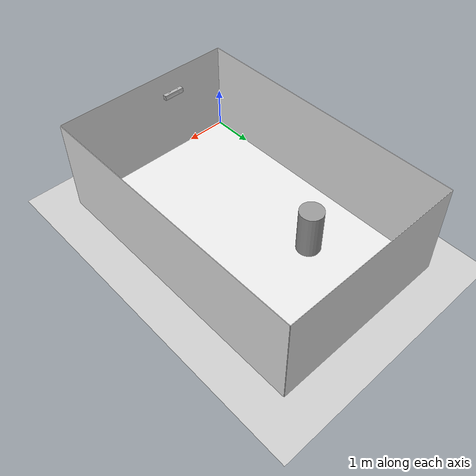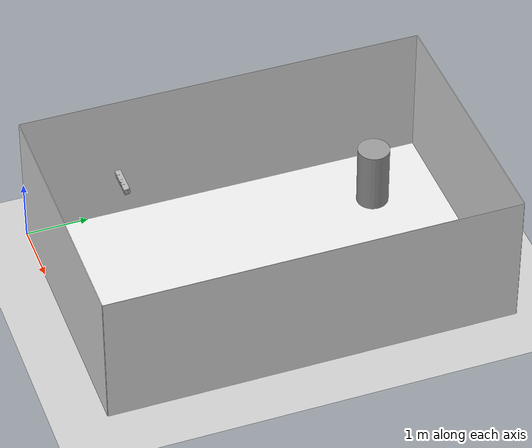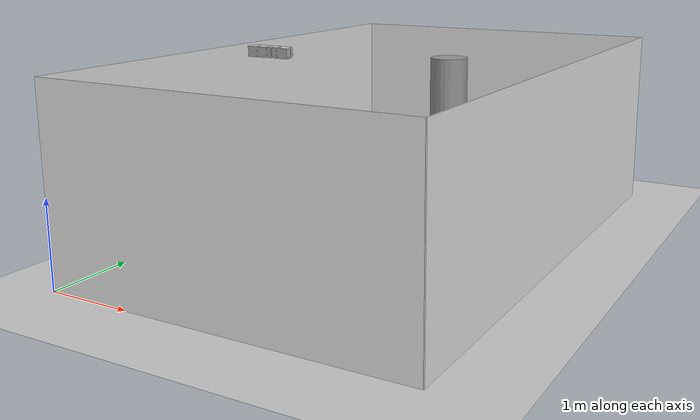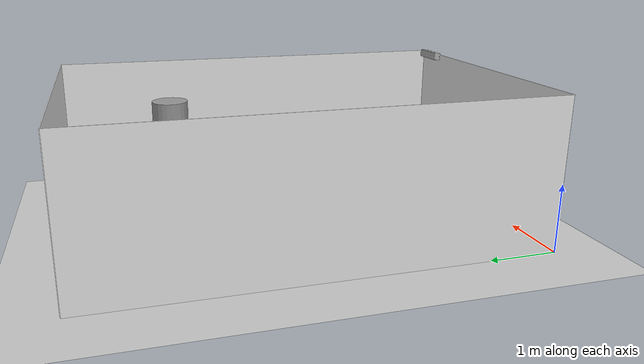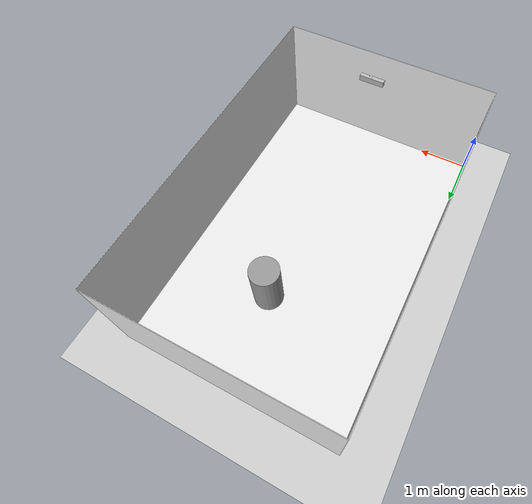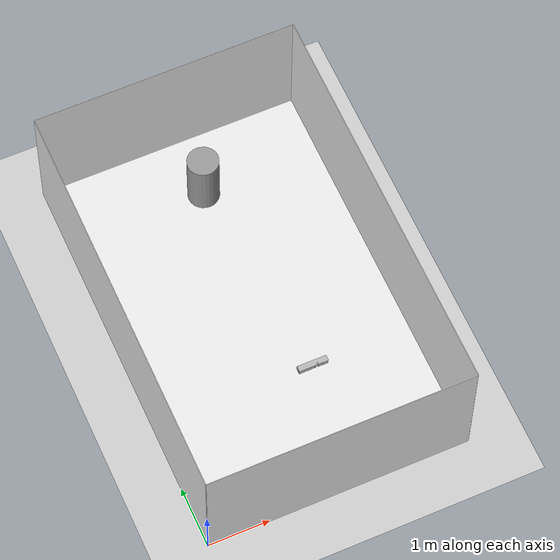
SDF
<?xml version="1.0" ?>
<sdf version="1.6">
  <world name="default">
    <include>
      <uri>model://ground_plane</uri>
    </include>
    <include>
      <uri>model://sun</uri>
    </include>

    <gui>
      <camera name='user_camera'>
        <pose>9.0 3.4 7.5 0.0 0.75 3.1</pose>
      </camera>
    </gui>

    <!-- basement tank -->
    <include>
      <uri>model://basement_tank</uri>
      <pose>0 0 0 0 0 0</pose>
      <static>true</static>
    </include>

    <!-- cylinder target -->
    <include>
      <uri>model://cylinder_target</uri>
      <pose>2.1 5.0 1.5 0 0 0</pose>
      <static>true</static>
    </include>

    <!-- SeaBat F50 -->
    <include>
      <uri>model://seabat_f50_nps_multibeam</uri>
      <name>seabat_f50</name>
      <pose>2.1 1.0 2.5 3.14159265359 -0.1 1.5709</pose>
      <static>true</static>
    </include>

  </world>
</sdf>

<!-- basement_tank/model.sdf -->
<sdf version='1.6'>
  <model name='basement_tank_model'>
    <link name='basement_tank'>
      <inertial>
        <mass>1</mass>
      </inertial>

      <collision name='bottom'>
        <laser_retro>50</laser_retro>
        <pose frame=''>2.135 3.27 0.005 0 -0 0</pose>
        <geometry>
          <box>
            <size>4.27 6.54 0.01</size>
          </box>
        </geometry>
      </collision>
      <visual name='visual1'>
        <laser_retro>50</laser_retro>
        <pose frame=''>2.135 3.27 0.005 0 -0 0</pose>
        <geometry>
          <box>
            <size>4.27 6.54 0.01</size>
          </box>
        </geometry>
        <material>
          <script>
            <uri>file://media/materials/scripts/gazebo.material</uri>
            <name>Gazebo/White</name>
          </script>
        </material>
      </visual>

      <collision name='left_side'>
        <laser_retro>50</laser_retro>
        <pose frame=''>-0.005 3.27 1.12 0 -0 0</pose>
        <geometry>
          <box>
            <size>0.01 6.54 2.24</size>
          </box>
        </geometry>
      </collision>
      <visual name='visual2'>
        <laser_retro>50</laser_retro>
        <pose frame=''>-0.005 3.27 1.12 0 -0 0</pose>
        <geometry>
          <box>
            <size>0.01 6.54 2.24</size>
          </box>
        </geometry>
        <material>
          <script>
            <uri>file://media/materials/scripts/gazebo.material</uri>
            <name>Gazebo/White</name>
          </script>
        </material>
      </visual>

      <collision name='right_side'>
        <laser_retro>50</laser_retro>
        <pose frame=''>4.275 3.27 1.12 0 -0 0</pose>
        <geometry>
          <box>
            <size>0.01 6.54 2.24</size>
          </box>
        </geometry>
      </collision>
      <visual name='visual3'>
        <laser_retro>50</laser_retro>
        <pose frame=''>4.275 3.27 1.12 0 -0 0</pose>
        <geometry>
          <box>
            <size>0.01 6.54 2.24</size>
          </box>
        </geometry>
        <material>
          <script>
            <uri>file://media/materials/scripts/gazebo.material</uri>
            <name>Gazebo/White</name>
          </script>
        </material>
      </visual>

      <collision name='front_side'>
        <laser_retro>50</laser_retro>
        <pose frame=''>2.135 -0.005 1.12 0 -0 0</pose>
        <geometry>
          <box>
            <size>4.27 0.01 2.24</size>
          </box>
        </geometry>
      </collision>
      <visual name='visual4'>
        <laser_retro>50</laser_retro>
        <pose frame=''>2.135 -0.005 1.12 0 -0 0</pose>
        <geometry>
          <box>
            <size>4.27 0.01 2.24</size>
          </box>
        </geometry>
        <material>
          <script>
            <uri>file://media/materials/scripts/gazebo.material</uri>
            <name>Gazebo/White</name>
          </script>
        </material>
      </visual>

      <collision name='back_side'>
        <laser_retro>50</laser_retro>
        <pose frame=''>2.135 6.545 1.12 0 -0 0</pose>
        <geometry>
          <box>
            <size>4.27 0.01 2.24</size>
          </box>
        </geometry>
      </collision>
      <visual name='visual5'>
        <laser_retro>50</laser_retro>
        <pose frame=''>2.135 6.545 1.12 0 -0 0</pose>
        <geometry>
          <box>
            <size>4.27 0.01 2.24</size>
          </box>
        </geometry>
        <material>
          <script>
            <uri>file://media/materials/scripts/gazebo.material</uri>
            <name>Gazebo/White</name>
          </script>
        </material>
      </visual>

    </link>
  </model>
</sdf>

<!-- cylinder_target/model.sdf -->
<sdf version="1.6">
  <model name ='cylinder_target'>
    <link name='link'>
      <inertial>
        <mass>1</mass>
        <inertia>
          <ixx>0.145833</ixx>
          <ixy>0</ixy>
          <ixz>0</ixz>
          <iyy>0.145833</iyy>
          <iyz>0</iyz>
          <izz>0.125</izz>
        </inertia>
        <pose frame=''>0 0 0 0 -0 0</pose>
      </inertial>
      <collision name='cylinder'>
        <laser_retro>255</laser_retro>
        <geometry>
          <cylinder>
            <radius>0.25</radius>
            <length>1</length>
          </cylinder>
        </geometry>
        <max_contacts>10</max_contacts>
        <surface>
          <contact>
            <ode/>
          </contact>
          <bounce/>
          <friction>
            <torsional>
              <ode/>
            </torsional>
            <ode/>
          </friction>
        </surface>
      </collision>
      <visual name='visual'>
        <laser_retro>255</laser_retro>
        <geometry>
          <cylinder>
            <radius>0.25</radius>
            <length>1</length>
          </cylinder>
        </geometry>
        <material>
          <script>
            <name>Gazebo/Grey</name>
            <uri>file://media/materials/scripts/gazebo.material</uri>
          </script>
        </material>
      </visual>
      <self_collide>0</self_collide>
      <enable_wind>0</enable_wind>
      <kinematic>0</kinematic>
    </link>
  </model>
</sdf>

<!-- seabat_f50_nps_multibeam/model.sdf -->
<sdf version="1.6">
  <model name="SeaBat-F50 FLS">
    <link name="forward_sonar_link">
      <inertial>
        <pose>0 0 0 0 0 1.570796</pose>
        <mass>8.2</mass>
        <inertia>
          <ixx>0.151702733</ixx>
          <ixy>0</ixy>
          <ixz>0</ixz>
          <iyy>0.012730835</iyy>
          <iyz>0</iyz>
          <izz>0.150214768</izz>
        </inertia>
      </inertial>
      <collision name="collision">
        <pose>0 0 0 0 0 1.570796</pose>
        <geometry>
          <box>
            <size>0.46 0.0907 0.102</size>
          </box>
        </geometry>
      </collision>
      <collision name="collision">
        <pose>0 0 0 0 1.570796 0</pose>
        <geometry>
          <mesh>
            <uri>model://seabat_f50_nps_multibeam/meshes/COLLISION-SeaBat-F50.dae</uri>
          </mesh>
        </geometry>
      </collision>
      <visual name="visual">
        <pose>0 0 0 0 1.570796 0</pose>
        <geometry>
          <mesh>
            <uri>model://seabat_f50_nps_multibeam/meshes/SeaBat-F50.dae</uri>
          </mesh>
        </geometry>
      </visual>

      <sensor name="multibeam_sonar" type="depth">
        <visualize>true</visualize>
        <always_on>true</always_on>
        <update_rate>15</update_rate>
        <camera>
          <!-- 140 degrees -->
          <horizontal_fov>2.44346</horizontal_fov>
          <image>
            <width>256</width>
            <!-- Set vertical FOV by setting image height -->
            <!-- Approx 1 times the spec sheet (sepc: 24 deg.) -->
            <height>43</height>
            <format>R8G8B8</format>
          </image>
          <clip>
            <near>2</near>            <!-- not defined -->
            <far>60</far>
          </clip>
          <depth_camera>
            <output>depths</output>
          </depth_camera>
          <save enabled="true">
            <path>/tmp/camera</path>
          </save>
        </camera>
        <plugin filename="libnps_multibeam_sonar_ros_plugin.so" name="forward_sonar">
          <!-- Sonar properties -->
          <verticalFOV>24</verticalFOV>
          <sonarFreq>400e3</sonarFreq>
          <bandwidth>29.9e3</bandwidth>
          <soundSpeed>1500</soundSpeed>
          <sourceLevel>220</sourceLevel>
          <maxDistance>10</maxDistance>
          <constantReflectivity>true</constantReflectivity>
          <raySkips>1</raySkips>
          <sensorGain>0.02</sensorGain>
          <plotScaler>0</plotScaler>
          <writeLog>false</writeLog>
          <debugFlag>false</debugFlag>
          <writeFrameInterval>5</writeFrameInterval>
          <!-- This name is prepended to ROS topics -->
          <cameraName>seabat_f50</cameraName>
          <!-- ROS publication topics -->
          <imageTopicName>image_raw</imageTopicName>
          <cameraInfoTopicName>image_raw/camera_info</cameraInfoTopicName>
          <pointCloudTopicName>point_cloud</pointCloudTopicName>
          <depthImageTopicName>image_depth</depthImageTopicName>
          <depthImageCameraInfoTopicName>image_depth/camera_info</depthImageCameraInfoTopicName>
          <sonarImageRawTopicName>sonar_image_raw</sonarImageRawTopicName>
          <sonarImageTopicName>sonar_image</sonarImageTopicName>
          <frameName>forward_sonar_optical_link</frameName>
        </plugin>
      </sensor>
    </link>
  </model>
</sdf>
